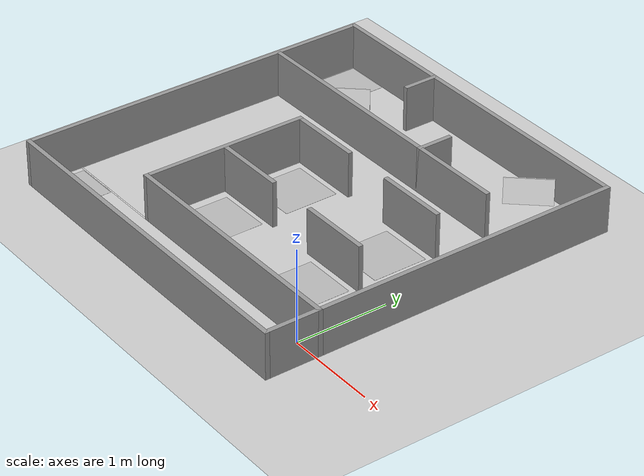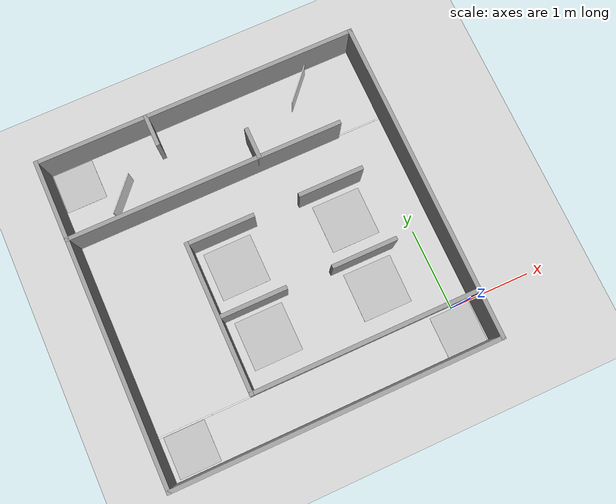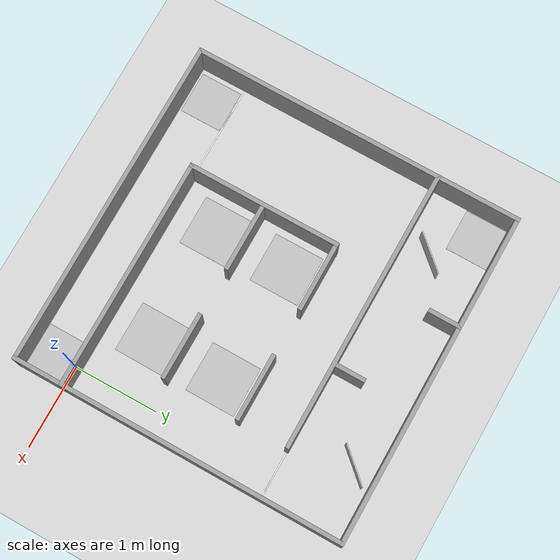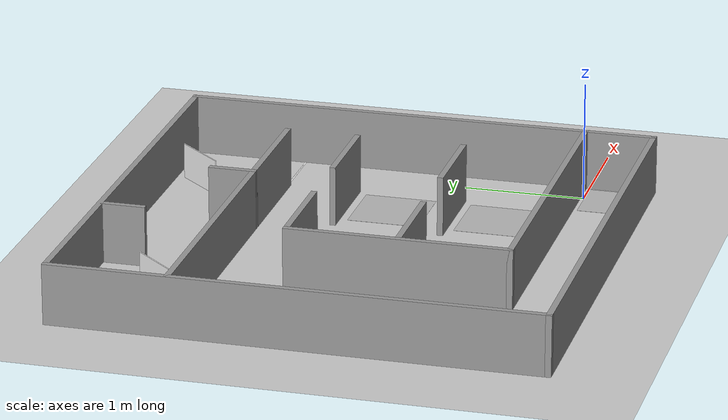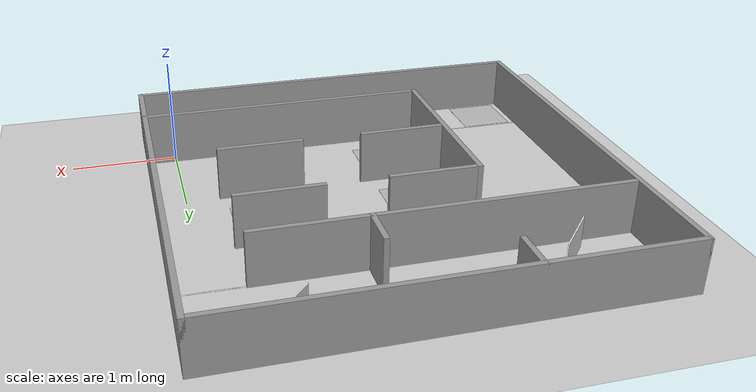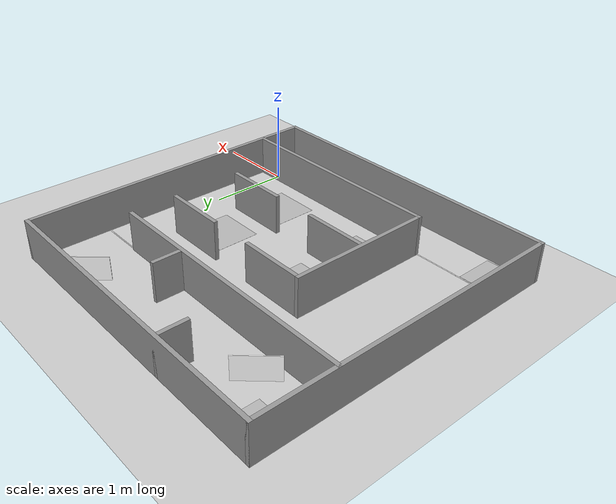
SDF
<sdf version="1.7">
 <world name="default">
  <light name="sun" type="directional">
   <pose>0 0 10 0 -0 0</pose>
   <diffuse>0.8 0.8 0.8 1</diffuse>
   <specular>0.2 0.2 0.2 1</specular>
   <attenuation>
    <range>1000</range>
    <constant>0.9</constant>
    <linear>0.01</linear>
    <quadratic>0.001</quadratic>
   </attenuation>
   <direction>-0.5 0.1 -0.9</direction>
   <spot><inner_angle>0</inner_angle><outer_angle>0</outer_angle><falloff>0</falloff></spot>
  </light>
  <model name="ground_plane">
   <static>1</static>
   <link name="link">
    <collision name="collision">
     <geometry><plane><normal>0 0 1</normal><size>100 100</size></plane></geometry>
     <surface><friction><ode><mu>100</mu><mu2>50</mu2></ode></friction></surface>
    </collision>
    <visual name="visual">
     <cast_shadows>0</cast_shadows>
     <geometry><plane><normal>0 0 1</normal><size>100 100</size></plane></geometry>
     <material>
      <script><uri>file://media/materials/scripts/gazebo.material</uri><name>Gazebo/Grey</name></script>
     </material>
    </visual>
   </link>
  </model>
  <gravity>0 0 -9.8</gravity>
  <magnetic_field>6e-06 2.3e-05 -4.2e-05</magnetic_field>
  <atmosphere type="adiabatic"/>
  <physics type="ode">
   <max_step_size>0.001</max_step_size>
   <real_time_factor>1</real_time_factor>
   <real_time_update_rate>1000</real_time_update_rate>
  </physics>
  <scene><ambient>0.4 0.4 0.4 1</ambient><background>0.7 0.7 0.7 1</background><shadows>1</shadows></scene>
  <spherical_coordinates>
   <surface_model>EARTH_WGS84</surface_model>
   <latitude_deg>0</latitude_deg>
   <longitude_deg>0</longitude_deg>
   <elevation>0</elevation>
   <heading_deg>0</heading_deg>
  </spherical_coordinates>
  <model name="newwall">
   <pose>-1.71093 1.44749 0 0 -0 0</pose>
   <link name="Wall_11">
    <collision name="Wall_11_Collision">
     <geometry><box><size>4 0.05 0.5</size></box></geometry>
     <pose>0 0 0.25 0 -0 0</pose>
    </collision>
    <visual name="Wall_11_Visual">
     <pose>0 0 0.25 0 -0 0</pose>
     <geometry><box><size>4 0.05 0.5</size></box></geometry>
     <material>
      <script><uri>file://media/materials/scripts/gazebo.material</uri><name>Gazebo/Grey</name></script>
      <ambient>1 1 1 1</ambient>
     </material>
     <meta><layer>0</layer></meta>
    </visual>
    <pose>0 1.975 0 0 -0 0</pose>
   </link>
   <link name="Wall_13">
    <collision name="Wall_13_Collision">
     <geometry><box><size>4 0.05 0.5</size></box></geometry>
     <pose>0 0 0.25 0 -0 0</pose>
    </collision>
    <visual name="Wall_13_Visual">
     <pose>0 0 0.25 0 -0 0</pose>
     <geometry><box><size>4 0.05 0.5</size></box></geometry>
     <material>
      <script><uri>file://media/materials/scripts/gazebo.material</uri><name>Gazebo/Grey</name></script>
      <ambient>1 1 1 1</ambient>
     </material>
     <meta><layer>0</layer></meta>
    </visual>
    <pose>1.975 0 0 0 -0 -1.5708</pose>
   </link>
   <link name="Wall_15">
    <collision name="Wall_15_Collision">
     <geometry><box><size>2.8 0.05 0.5</size></box></geometry>
     <pose>0 0 0.25 0 -0 0</pose>
    </collision>
    <visual name="Wall_15_Visual">
     <pose>0 0 0.25 0 -0 0</pose>
     <geometry><box><size>2.8 0.05 0.5</size></box></geometry>
     <material>
      <script><uri>file://media/materials/scripts/gazebo.material</uri><name>Gazebo/Grey</name></script>
      <ambient>1 1 1 1</ambient>
     </material>
     <meta><layer>0</layer></meta>
    </visual>
    <pose>0.6 -1.4 0 0 -0 3.14159</pose>
   </link>
   <link name="Wall_17">
    <collision name="Wall_17_Collision">
     <geometry><box><size>3.4 0.05 0.5</size></box></geometry>
     <pose>0 0 0.25 0 -0 0</pose>
    </collision>
    <visual name="Wall_17_Visual">
     <pose>0 0 0.25 0 -0 0</pose>
     <geometry><box><size>3.4 0.05 0.5</size></box></geometry>
     <material>
      <script><uri>file://media/materials/scripts/gazebo.material</uri><name>Gazebo/Grey</name></script>
      <ambient>1 1 1 1</ambient>
     </material>
     <meta><layer>0</layer></meta>
    </visual>
    <pose>-0.3 1 0 0 -0 0</pose>
   </link>
   <link name="Wall_19">
    <collision name="Wall_19_Collision">
     <geometry><box><size>0.8 0.05 0.5</size></box></geometry>
     <pose>0 0 0.25 0 -0 0</pose>
    </collision>
    <visual name="Wall_19_Visual">
     <pose>0 0 0.25 0 -0 0</pose>
     <geometry><box><size>0.8 0.05 0.5</size></box></geometry>
     <material>
      <script><uri>file://media/materials/scripts/gazebo.material</uri><name>Gazebo/Grey</name></script>
      <ambient>1 1 1 1</ambient>
     </material>
     <meta><layer>0</layer></meta>
    </visual>
    <pose>1 -0.5 0 0 -0 0</pose>
   </link>
   <link name="Wall_21">
    <collision name="Wall_21_Collision">
     <geometry><box><size>0.8 0.05 0.5</size></box></geometry>
     <pose>0 0 0.25 0 -0 0</pose>
    </collision>
    <visual name="Wall_21_Visual">
     <pose>0 0 0.25 0 -0 0</pose>
     <geometry><box><size>0.8 0.05 0.5</size></box></geometry>
     <material>
      <script><uri>file://media/materials/scripts/gazebo.material</uri><name>Gazebo/Grey</name></script>
      <ambient>1 1 1 1</ambient>
     </material>
     <meta><layer>0</layer></meta>
    </visual>
    <pose>-0.35 -0.5 0 0 -0 3.14159</pose>
   </link>
   <link name="Wall_23">
    <collision name="Wall_23_Collision">
     <geometry><box><size>0.8 0.05 0.5</size></box></geometry>
     <pose>0 0 0.25 0 -0 0</pose>
    </collision>
    <visual name="Wall_23_Visual">
     <pose>0 0 0.25 0 -0 0</pose>
     <geometry><box><size>0.8 0.05 0.5</size></box></geometry>
     <material>
      <script><uri>file://media/materials/scripts/gazebo.material</uri><name>Gazebo/Grey</name></script>
      <ambient>1 1 1 1</ambient>
     </material>
     <meta><layer>0</layer></meta>
    </visual>
    <pose>-0.35 0.4 0 0 -0 3.14159</pose>
   </link>
   <link name="Wall_25">
    <collision name="Wall_25_Collision">
     <geometry><box><size>0.8 0.05 0.5</size></box></geometry>
     <pose>0 0 0.25 0 -0 0</pose>
    </collision>
    <visual name="Wall_25_Visual">
     <pose>0 0 0.25 0 -0 0</pose>
     <geometry><box><size>0.8 0.05 0.5</size></box></geometry>
     <material>
      <script><uri>file://media/materials/scripts/gazebo.material</uri><name>Gazebo/Grey</name></script>
      <ambient>1 1 1 1</ambient>
     </material>
     <meta><layer>0</layer></meta>
    </visual>
    <pose>1 0.4 0 0 -0 0</pose>
   </link>
   <link name="Wall_27">
    <collision name="Wall_27_Collision">
     <geometry><box><size>0.4 0.05 0.5</size></box></geometry>
     <pose>0 0 0.25 0 -0 0</pose>
    </collision>
    <visual name="Wall_27_Visual">
     <pose>0 0 0.25 0 -0 0</pose>
     <geometry><box><size>0.4 0.05 0.5</size></box></geometry>
     <material>
      <script><uri>file://media/materials/scripts/gazebo.material</uri><name>Gazebo/Grey</name></script>
      <ambient>1 1 1 1</ambient>
     </material>
     <meta><layer>0</layer></meta>
    </visual>
    <pose>0.375 1.175 0 0 -0 1.5708</pose>
   </link>
   <link name="Wall_29">
    <collision name="Wall_29_Collision">
     <geometry><box><size>0.4 0.05 0.5</size></box></geometry>
     <pose>0 0 0.25 0 -0 0</pose>
    </collision>
    <visual name="Wall_29_Visual">
     <pose>0 0 0.25 0 -0 0</pose>
     <geometry><box><size>0.4 0.05 0.5</size></box></geometry>
     <material>
      <script><uri>file://media/materials/scripts/gazebo.material</uri><name>Gazebo/Grey</name></script>
      <ambient>1 1 1 1</ambient>
     </material>
     <meta><layer>0</layer></meta>
    </visual>
    <pose>-0.625 1.8 0 0 -0 -1.5708</pose>
   </link>
   <link name="Wall_32">
    <collision name="Wall_32_Collision">
     <geometry><box><size>1.85 0.05 0.5</size></box></geometry>
     <pose>0 0 0.25 0 -0 0</pose>
    </collision>
    <visual name="Wall_32_Visual">
     <pose>0 0 0.25 0 -0 0</pose>
     <geometry><box><size>1.85 0.05 0.5</size></box></geometry>
     <material>
      <script><uri>file://media/materials/scripts/gazebo.material</uri><name>Gazebo/Grey</name></script>
      <ambient>1 1 1 1</ambient>
     </material>
     <meta><layer>0</layer></meta>
    </visual>
    <pose>-0.775 -0.5 0 0 -0 1.5708</pose>
   </link>
   <link name="Wall_6">
    <collision name="Wall_6_Collision">
     <geometry><box><size>4 0.05 0.5</size></box></geometry>
     <pose>0 0 0.25 0 -0 0</pose>
    </collision>
    <visual name="Wall_6_Visual">
     <pose>0 0 0.25 0 -0 0</pose>
     <geometry><box><size>4 0.05 0.5</size></box></geometry>
     <material>
      <script><uri>file://media/materials/scripts/gazebo.material</uri><name>Gazebo/Grey</name></script>
      <ambient>1 1 1 1</ambient>
     </material>
     <meta><layer>0</layer></meta>
    </visual>
    <pose>0 -1.975 0 0 -0 3.14159</pose>
   </link>
   <link name="Wall_9">
    <collision name="Wall_9_Collision">
     <geometry><box><size>4 0.05 0.5</size></box></geometry>
     <pose>0 0 0.25 0 -0 0</pose>
    </collision>
    <visual name="Wall_9_Visual">
     <pose>0 0 0.25 0 -0 0</pose>
     <geometry><box><size>4 0.05 0.5</size></box></geometry>
     <material>
      <script><uri>file://media/materials/scripts/gazebo.material</uri><name>Gazebo/Grey</name></script>
      <ambient>1 1 1 1</ambient>
     </material>
     <meta><layer>0</layer></meta>
    </visual>
    <pose>-1.975 0 0 0 -0 1.5708</pose>
   </link>
   <static>1</static>
  </model>
  <model name="white_line">
   <static>1</static>
   <link name="link">
    <collision name="collision">
     <geometry><box><size>0.5 0.015 0.0001</size><normal>0 0 1</normal></box></geometry>
     <surface><friction><ode><mu>100</mu><mu2>50</mu2></ode></friction></surface>
    </collision>
    <visual name="visual">
     <geometry><box><size>0.5 0.015 0.0001</size><normal>0 0 1</normal></box></geometry>
     <material>
      <script>
       <uri>model://white_line/materials/scripts</uri>
       <uri>model://white_line/materials/textures</uri>
       <name>white_line</name>
      </script>
     </material>
    </visual>
   </link>
   <pose>-2.75811 0.029626 0 0 -0 0</pose>
  </model>
  <model name="white_line_clone">
   <static>1</static>
   <link name="link">
    <collision name="collision">
     <geometry><box><size>0.5 0.015 0.0001</size><normal>0 0 1</normal></box></geometry>
     <surface><friction><ode><mu>100</mu><mu2>50</mu2></ode></friction></surface>
    </collision>
    <visual name="visual">
     <geometry><box><size>0.5 0.015 0.0001</size><normal>0 0 1</normal></box></geometry>
     <material>
      <script>
       <uri>model://white_line/materials/scripts</uri>
       <uri>model://white_line/materials/textures</uri>
       <name>white_line</name>
      </script>
     </material>
    </visual>
   </link>
   <pose>-0.083256 2.451 0 0 -0 0</pose>
  </model>
  <model name="white_line_clone_0">
   <static>1</static>
   <link name="link">
    <collision name="collision">
     <geometry><box><size>0.5 0.015 0.0001</size><normal>0 0 1</normal></box></geometry>
     <surface><friction><ode><mu>100</mu><mu2>50</mu2></ode></friction></surface>
    </collision>
    <visual name="visual">
     <geometry><box><size>0.5 0.015 0.0001</size><normal>0 0 1</normal></box></geometry>
     <material>
      <script>
       <uri>model://white_line/materials/scripts</uri>
       <uri>model://white_line/materials/textures</uri>
       <name>white_line</name>
      </script>
     </material>
    </visual>
   </link>
   <pose>-3.25414 0.031451 0 0 -0 0</pose>
  </model>
  <model name="white_line_clone_1">
   <static>1</static>
   <link name="link">
    <collision name="collision">
     <geometry><box><size>0.5 0.015 0.0001</size><normal>0 0 1</normal></box></geometry>
     <surface><friction><ode><mu>100</mu><mu2>50</mu2></ode></friction></surface>
    </collision>
    <visual name="visual">
     <geometry><box><size>0.5 0.015 0.0001</size><normal>0 0 1</normal></box></geometry>
     <material>
      <script>
       <uri>model://white_line/materials/scripts</uri>
       <uri>model://white_line/materials/textures</uri>
       <name>white_line</name>
      </script>
     </material>
    </visual>
   </link>
   <pose>-3.41254 0.031914 0 0 -0 0</pose>
  </model>
  <model name="white_line_clone_2">
   <static>1</static>
   <link name="link">
    <collision name="collision">
     <geometry><box><size>0.5 0.015 0.0001</size><normal>0 0 1</normal></box></geometry>
     <surface><friction><ode><mu>100</mu><mu2>50</mu2></ode></friction></surface>
    </collision>
    <visual name="visual">
     <geometry><box><size>0.5 0.015 0.0001</size><normal>0 0 1</normal></box></geometry>
     <material>
      <script>
       <uri>model://white_line/materials/scripts</uri>
       <uri>model://white_line/materials/textures</uri>
       <name>white_line</name>
      </script>
     </material>
    </visual>
   </link>
   <pose>-0.008429 2.44988 0 0 -0 0</pose>
  </model>
  <model name="19th_start">
   <static>1</static>
   <link name="link">
    <collision name="collision">
     <geometry><box><size>0.5 0.5 0.001</size><normal>0 0 1</normal></box></geometry>
     <surface><friction><ode><mu>100</mu><mu2>50</mu2></ode></friction></surface>
    </collision>
    <visual name="visual">
     <cast_shadows>0</cast_shadows>
     <geometry><box><size>0.5 0.5 0.001</size><normal>0 0 1</normal></box></geometry>
     <material>
      <script>
       <uri>model://19th_ros_start/materials/scripts</uri>
       <uri>model://19th_ros_start/materials/textures</uri>
       <name>qr_position2_mat</name>
      </script>
     </material>
    </visual>
   </link>
   <pose>-0.026098 -0.256075 0 0 -0 0</pose>
  </model>
  <model name="19th_pickup_point">
   <static>1</static>
   <link name="link">
    <collision name="collision">
     <geometry><box><size>0.6 0.6 0.001</size><normal>0 0 1</normal></box></geometry>
     <surface><friction><ode><mu>100</mu><mu2>50</mu2></ode></friction></surface>
    </collision>
    <visual name="visual">
     <cast_shadows>0</cast_shadows>
     <geometry><box><size>0.6 0.6 0.001</size><normal>0 0 1</normal></box></geometry>
     <material>
      <script>
       <uri>model://19th_pickup_point/materials/scripts</uri>
       <uri>model://19th_pickup_point/materials/textures</uri>
       <name>19th_pickup_point</name>
      </script>
     </material>
    </visual>
   </link>
   <pose>-2.07852 1.46651 0 0 -0 1.57486</pose>
  </model>
  <model name="19th_pickup_point_0">
   <static>1</static>
   <link name="link">
    <collision name="collision">
     <geometry><box><size>0.6 0.6 0.001</size><normal>0 0 1</normal></box></geometry>
     <surface><friction><ode><mu>100</mu><mu2>50</mu2></ode></friction></surface>
    </collision>
    <visual name="visual">
     <cast_shadows>0</cast_shadows>
     <geometry><box><size>0.6 0.6 0.001</size><normal>0 0 1</normal></box></geometry>
     <material>
      <script>
       <uri>model://19th_pickup_point/materials/scripts</uri>
       <uri>model://19th_pickup_point/materials/textures</uri>
       <name>19th_pickup_point</name>
      </script>
     </material>
    </visual>
   </link>
   <pose>-0.669121 1.46074 0 0 -0 1.56997</pose>
  </model>
  <model name="19th_pickup_point_1">
   <static>1</static>
   <link name="link">
    <collision name="collision">
     <geometry><box><size>0.6 0.6 0.001</size><normal>0 0 1</normal></box></geometry>
     <surface><friction><ode><mu>100</mu><mu2>50</mu2></ode></friction></surface>
    </collision>
    <visual name="visual">
     <cast_shadows>0</cast_shadows>
     <geometry><box><size>0.6 0.6 0.001</size><normal>0 0 1</normal></box></geometry>
     <material>
      <script>
       <uri>model://19th_pickup_point/materials/scripts</uri>
       <uri>model://19th_pickup_point/materials/textures</uri>
       <name>19th_pickup_point</name>
      </script>
     </material>
    </visual>
   </link>
   <pose>-2.06622 0.574865 0 0 -0 1.57328</pose>
  </model>
  <model name="19th_pickup_point_2">
   <static>1</static>
   <link name="link">
    <collision name="collision">
     <geometry><box><size>0.6 0.6 0.001</size><normal>0 0 1</normal></box></geometry>
     <surface><friction><ode><mu>100</mu><mu2>50</mu2></ode></friction></surface>
    </collision>
    <visual name="visual">
     <cast_shadows>0</cast_shadows>
     <geometry><box><size>0.6 0.6 0.001</size><normal>0 0 1</normal></box></geometry>
     <material>
      <script>
       <uri>model://19th_pickup_point/materials/scripts</uri>
       <uri>model://19th_pickup_point/materials/textures</uri>
       <name>19th_pickup_point</name>
      </script>
     </material>
    </visual>
   </link>
   <pose>-0.676299 0.566138 0 0 -0 1.56553</pose>
  </model>
  <model name="19th_QR_position3">
   <static>1</static>
   <link name="link">
    <collision name="collision">
     <geometry><box><size>0.5 0.5 0.001</size><normal>0 0 1</normal></box></geometry>
     <surface><friction><ode><mu>100</mu><mu2>50</mu2></ode></friction></surface>
    </collision>
    <visual name="visual">
     <cast_shadows>0</cast_shadows>
     <geometry><box><size>0.5 0.5 0.001</size><normal>0 0 1</normal></box></geometry>
     <material>
      <script>
       <uri>model://19th_QR_position3/materials/scripts</uri>
       <uri>model://19th_QR_position3/materials/textures</uri>
       <name>position_qr3</name>
      </script>
     </material>
    </visual>
   </link>
   <pose>-3.35946 -0.233173 0 0 -0 0</pose>
  </model>
  <model name="19th_QR_position3_0">
   <static>1</static>
   <link name="link">
    <collision name="collision">
     <geometry><box><size>0.5 0.5 0.001</size><normal>0 0 1</normal></box></geometry>
     <surface><friction><ode><mu>100</mu><mu2>50</mu2></ode></friction></surface>
    </collision>
    <visual name="visual">
     <cast_shadows>0</cast_shadows>
     <geometry><box><size>0.5 0.5 0.001</size><normal>0 0 1</normal></box></geometry>
     <material>
      <script>
       <uri>model://19th_QR_position3/materials/scripts</uri>
       <uri>model://19th_QR_position3/materials/textures</uri>
       <name>position_qr3</name>
      </script>
     </material>
    </visual>
   </link>
   <pose>-3.40415 3.14385 0 0 -0 0</pose>
  </model>
  <model name="BarrierPlate">
   <link name="BarrierPlate">
    <pose>0.0005 0 0 0 0 -1.5708</pose>
    <visual name="BarrierPlate1">
     <pose>0 0 0.15 0 -0 0</pose>
     <geometry><box><size>0.5 0.01 0.3</size></box></geometry>
     <material><ambient>1 1 1 1</ambient><shader type="pixel"/></material>
     <meta><layer>0</layer></meta>
    </visual>
    <collision name="BarrierPlate2">
     <pose>0 0 0.15 0 -0 0</pose>
     <geometry><box><size>0.5 0.01 0.3</size></box></geometry>
     <surface>
      <friction>
       <ode><mu>1</mu><mu2>1</mu2><fdir1>0 0 0</fdir1><slip1>0</slip1><slip2>0</slip2></ode>
       <torsional>
        <coefficient>1</coefficient>
        <patch_radius>0</patch_radius>
        <surface_radius>0</surface_radius>
        <use_patch_radius>1</use_patch_radius>
        <ode><slip>0</slip></ode>
       </torsional>
      </friction>
      <bounce><restitution_coefficient>0</restitution_coefficient><threshold>1e+06</threshold></bounce>
      <contact>
       <collide_without_contact>0</collide_without_contact>
       <collide_without_contact_bitmask>1</collide_without_contact_bitmask>
       <collide_bitmask>1</collide_bitmask>
       <ode>
        <soft_cfm>0</soft_cfm>
        <soft_erp>0.2</soft_erp>
        <kp>1e+13</kp>
        <kd>1</kd>
        <max_vel>0.01</max_vel>
        <min_depth>0</min_depth>
       </ode>
       <bullet>
        <split_impulse>1</split_impulse>
        <split_impulse_penetration_threshold>-0.01</split_impulse_penetration_threshold>
        <soft_cfm>0</soft_cfm>
        <soft_erp>0.2</soft_erp>
        <kp>1e+13</kp>
        <kd>1</kd>
       </bullet>
      </contact>
     </surface>
    </collision>
   </link>
   <static>1</static>
   <pose>-2.95623 2.76509 0 0 0 -0.72739</pose>
  </model>
  <model name="BarrierPlate_clone">
   <link name="BarrierPlate">
    <pose>0.0005 0 0 0 0 -1.5708</pose>
    <visual name="BarrierPlate1">
     <pose>0 0 0.15 0 -0 0</pose>
     <geometry><box><size>0.5 0.01 0.3</size></box></geometry>
     <material><ambient>1 1 1 1</ambient><shader type="pixel"/></material>
     <meta><layer>0</layer></meta>
    </visual>
    <collision name="BarrierPlate2">
     <pose>0 0 0.15 0 -0 0</pose>
     <geometry><box><size>0.5 0.01 0.3</size></box></geometry>
     <surface>
      <friction>
       <ode><mu>1</mu><mu2>1</mu2><fdir1>0 0 0</fdir1><slip1>0</slip1><slip2>0</slip2></ode>
       <torsional>
        <coefficient>1</coefficient>
        <patch_radius>0</patch_radius>
        <surface_radius>0</surface_radius>
        <use_patch_radius>1</use_patch_radius>
        <ode><slip>0</slip></ode>
       </torsional>
      </friction>
      <bounce><restitution_coefficient>0</restitution_coefficient><threshold>1e+06</threshold></bounce>
      <contact>
       <collide_without_contact>0</collide_without_contact>
       <collide_without_contact_bitmask>1</collide_without_contact_bitmask>
       <collide_bitmask>1</collide_bitmask>
       <ode>
        <soft_cfm>0</soft_cfm>
        <soft_erp>0.2</soft_erp>
        <kp>1e+13</kp>
        <kd>1</kd>
        <max_vel>0.01</max_vel>
        <min_depth>0</min_depth>
       </ode>
       <bullet>
        <split_impulse>1</split_impulse>
        <split_impulse_penetration_threshold>-0.01</split_impulse_penetration_threshold>
        <soft_cfm>0</soft_cfm>
        <soft_erp>0.2</soft_erp>
        <kp>1e+13</kp>
        <kd>1</kd>
       </bullet>
      </contact>
     </surface>
    </collision>
   </link>
   <static>1</static>
   <pose>-0.526138 3.14942 0 0 0 -0.72739</pose>
  </model>
 </world>
</sdf>
